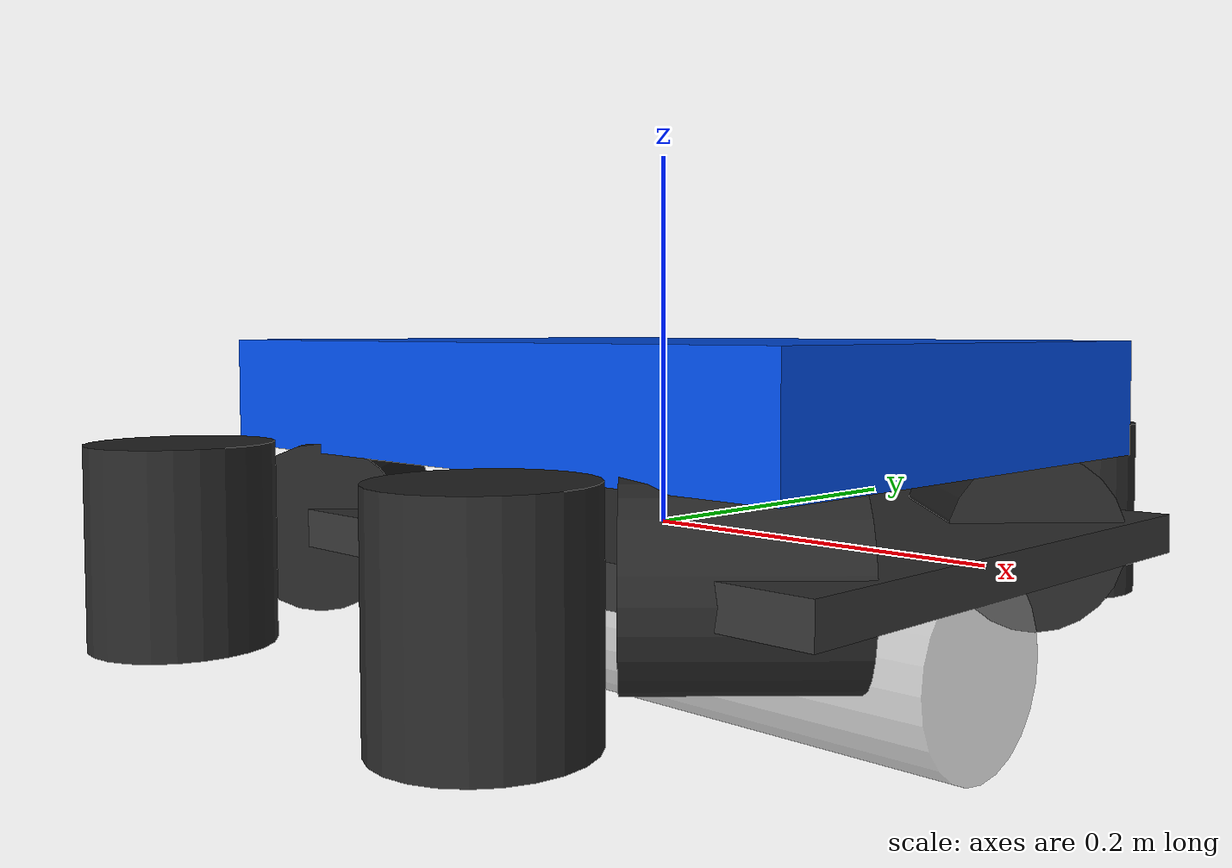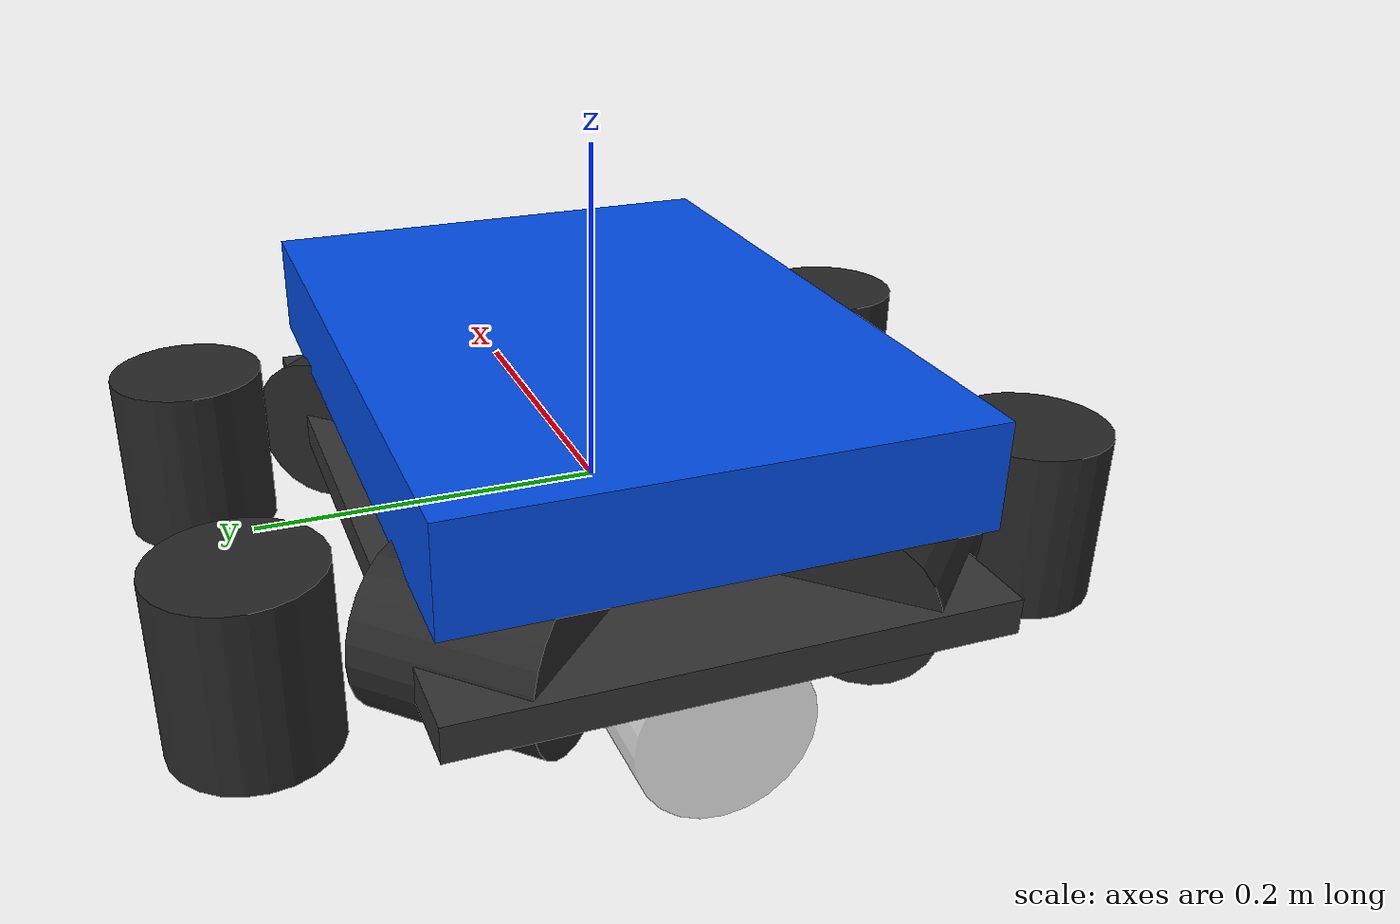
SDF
<?xml version="1.0"?>
<sdf version="1.11">
  <model name="rov">
    <link name="base_link">
      <inertial>
        <pose>0 0 0 0 0 0</pose>
        <mass>11.0</mass>
        <inertia>
          <ixx>0.1696</ixx><iyy>0.2429</iyy><izz>0.2979</izz>
          <ixy>0</ixy><ixz>0</ixz><iyz>0</iyz>
        </inertia>
        <fluid_added_mass>
          <xx>5.5</xx><xy>0</xy><xz>0</xz><xp>0</xp><xq>0</xq><xr>0</xr>
          <yy>12.7</yy><yz>0</yz><yp>0</yp><yq>0</yq><yr>0</yr>
          <zz>14.57</zz><zp>0</zp><zq>0</zq><zr>0</zr>
          <pp>0.12</pp><pq>0</pq><pr>0</pr>
          <qq>0.12</qq><qr>0</qr>
          <rr>0.12</rr>
        </fluid_added_mass>
      </inertial>

      <!-- Buoyancy + contact volume: 0.40 x 0.29 x 0.10 = 0.0116 m^3 -->
      <collision name="hull_collision">
        <pose>0 0 0.04 0 0 0</pose>
        <geometry><box><size>0.40 0.29 0.10</size></box></geometry>
      </collision>

      <!-- Visuals: frame + buoyancy block + electronics tube -->
      <visual name="frame_visual">
        <pose>0 0 0 0 0 0</pose>
        <geometry><box><size>0.44 0.30 0.02</size></box></geometry>
        <material><ambient>0.1 0.1 0.1 1</ambient><diffuse>0.2 0.2 0.2 1</diffuse></material>
      </visual>
      <visual name="float_visual">
        <pose>0 0 0.07 0 0 0</pose>
        <geometry><box><size>0.40 0.29 0.06</size></box></geometry>
        <material><ambient>0.0 0.2 0.6 1</ambient><diffuse>0.0 0.3 0.9 1</diffuse></material>
      </visual>
      <visual name="tube_visual">
        <pose>0 0 -0.05 0 1.5708 0</pose>
        <geometry><cylinder><radius>0.05</radius><length>0.40</length></cylinder></geometry>
        <material><ambient>0.6 0.6 0.6 0.6</ambient><diffuse>0.7 0.7 0.7 0.6</diffuse></material>
      </visual>

      <!-- IMU: co-located with base_link (imu_link in the URDF) -->
      <sensor name="imu_sensor" type="imu">
        <gz_frame_id>imu_link</gz_frame_id>
        <always_on>1</always_on>
        <update_rate>100</update_rate>
        <topic>/rov/imu</topic>
        <imu>
          <angular_velocity>
            <x><noise type="gaussian"><mean>0</mean><stddev>0.002</stddev></noise></x>
            <y><noise type="gaussian"><mean>0</mean><stddev>0.002</stddev></noise></y>
            <z><noise type="gaussian"><mean>0</mean><stddev>0.002</stddev></noise></z>
          </angular_velocity>
          <linear_acceleration>
            <x><noise type="gaussian"><mean>0</mean><stddev>0.02</stddev></noise></x>
            <y><noise type="gaussian"><mean>0</mean><stddev>0.02</stddev></noise></y>
            <z><noise type="gaussian"><mean>0</mean><stddev>0.02</stddev></noise></z>
          </linear_acceleration>
        </imu>
      </sensor>

      <!-- Forward camera. Pose must match camera_link in urdf/rov.urdf -->
      <sensor name="front_camera" type="camera">
        <pose>0.22 0 0.0 0 0 0</pose>
        <gz_frame_id>camera_optical_frame</gz_frame_id>
        <always_on>1</always_on>
        <update_rate>15</update_rate>
        <topic>/rov/camera/image</topic>
        <camera>
          <camera_info_topic>/rov/camera/camera_info</camera_info_topic>
          <horizontal_fov>1.40</horizontal_fov>
          <image><width>640</width><height>480</height><format>R8G8B8</format></image>
          <clip><near>0.05</near><far>30</far></clip>
        </camera>
      </sensor>
    </link>

    <link name="thruster1">
      <pose>0.15 -0.11 0.0 0 0 0</pose>
      <inertial>
        <mass>0.05</mass>
        <inertia><ixx>2e-5</ixx><iyy>2e-5</iyy><izz>3e-5</izz><ixy>0</ixy><ixz>0</ixz><iyz>0</iyz></inertia>
      </inertial>
      <visual name="visual">
        <pose>0 0 0 0 1.570796 0.785398</pose>
        <geometry><cylinder><radius>0.045</radius><length>0.10</length></cylinder></geometry>
        <material><ambient>0.1 0.1 0.1 1</ambient><diffuse>0.15 0.15 0.15 1</diffuse></material>
      </visual>
    </link>
    <joint name="thruster1_joint" type="revolute">
      <parent>base_link</parent>
      <child>thruster1</child>
      <axis>
        <xyz>0.70710678 0.70710678 0.0</xyz>
        <limit><lower>-1e16</lower><upper>1e16</upper><effort>1e6</effort><velocity>1e6</velocity></limit>
      </axis>
    </joint>
    <link name="thruster2">
      <pose>0.15 0.11 0.0 0 0 0</pose>
      <inertial>
        <mass>0.05</mass>
        <inertia><ixx>2e-5</ixx><iyy>2e-5</iyy><izz>3e-5</izz><ixy>0</ixy><ixz>0</ixz><iyz>0</iyz></inertia>
      </inertial>
      <visual name="visual">
        <pose>0 0 0 0 1.570796 -0.785398</pose>
        <geometry><cylinder><radius>0.045</radius><length>0.10</length></cylinder></geometry>
        <material><ambient>0.1 0.1 0.1 1</ambient><diffuse>0.15 0.15 0.15 1</diffuse></material>
      </visual>
    </link>
    <joint name="thruster2_joint" type="revolute">
      <parent>base_link</parent>
      <child>thruster2</child>
      <axis>
        <xyz>0.70710678 -0.70710678 0.0</xyz>
        <limit><lower>-1e16</lower><upper>1e16</upper><effort>1e6</effort><velocity>1e6</velocity></limit>
      </axis>
    </joint>
    <link name="thruster3">
      <pose>-0.15 -0.11 0.0 0 0 0</pose>
      <inertial>
        <mass>0.05</mass>
        <inertia><ixx>2e-5</ixx><iyy>2e-5</iyy><izz>3e-5</izz><ixy>0</ixy><ixz>0</ixz><iyz>0</iyz></inertia>
      </inertial>
      <visual name="visual">
        <pose>0 0 0 0 1.570796 -0.785398</pose>
        <geometry><cylinder><radius>0.045</radius><length>0.10</length></cylinder></geometry>
        <material><ambient>0.1 0.1 0.1 1</ambient><diffuse>0.15 0.15 0.15 1</diffuse></material>
      </visual>
    </link>
    <joint name="thruster3_joint" type="revolute">
      <parent>base_link</parent>
      <child>thruster3</child>
      <axis>
        <xyz>0.70710678 -0.70710678 0.0</xyz>
        <limit><lower>-1e16</lower><upper>1e16</upper><effort>1e6</effort><velocity>1e6</velocity></limit>
      </axis>
    </joint>
    <link name="thruster4">
      <pose>-0.15 0.11 0.0 0 0 0</pose>
      <inertial>
        <mass>0.05</mass>
        <inertia><ixx>2e-5</ixx><iyy>2e-5</iyy><izz>3e-5</izz><ixy>0</ixy><ixz>0</ixz><iyz>0</iyz></inertia>
      </inertial>
      <visual name="visual">
        <pose>0 0 0 0 1.570796 0.785398</pose>
        <geometry><cylinder><radius>0.045</radius><length>0.10</length></cylinder></geometry>
        <material><ambient>0.1 0.1 0.1 1</ambient><diffuse>0.15 0.15 0.15 1</diffuse></material>
      </visual>
    </link>
    <joint name="thruster4_joint" type="revolute">
      <parent>base_link</parent>
      <child>thruster4</child>
      <axis>
        <xyz>0.70710678 0.70710678 0.0</xyz>
        <limit><lower>-1e16</lower><upper>1e16</upper><effort>1e6</effort><velocity>1e6</velocity></limit>
      </axis>
    </joint>
    <link name="thruster5">
      <pose>0.12 -0.22 0.0 0 0 0</pose>
      <inertial>
        <mass>0.05</mass>
        <inertia><ixx>2e-5</ixx><iyy>2e-5</iyy><izz>3e-5</izz><ixy>0</ixy><ixz>0</ixz><iyz>0</iyz></inertia>
      </inertial>
      <visual name="visual">
        <pose>0 0 0 0 0.000000 0.000000</pose>
        <geometry><cylinder><radius>0.045</radius><length>0.10</length></cylinder></geometry>
        <material><ambient>0.1 0.1 0.1 1</ambient><diffuse>0.15 0.15 0.15 1</diffuse></material>
      </visual>
    </link>
    <joint name="thruster5_joint" type="revolute">
      <parent>base_link</parent>
      <child>thruster5</child>
      <axis>
        <xyz>0.0 0.0 1.0</xyz>
        <limit><lower>-1e16</lower><upper>1e16</upper><effort>1e6</effort><velocity>1e6</velocity></limit>
      </axis>
    </joint>
    <link name="thruster6">
      <pose>0.12 0.22 0.0 0 0 0</pose>
      <inertial>
        <mass>0.05</mass>
        <inertia><ixx>2e-5</ixx><iyy>2e-5</iyy><izz>3e-5</izz><ixy>0</ixy><ixz>0</ixz><iyz>0</iyz></inertia>
      </inertial>
      <visual name="visual">
        <pose>0 0 0 0 0.000000 0.000000</pose>
        <geometry><cylinder><radius>0.045</radius><length>0.10</length></cylinder></geometry>
        <material><ambient>0.1 0.1 0.1 1</ambient><diffuse>0.15 0.15 0.15 1</diffuse></material>
      </visual>
    </link>
    <joint name="thruster6_joint" type="revolute">
      <parent>base_link</parent>
      <child>thruster6</child>
      <axis>
        <xyz>0.0 0.0 1.0</xyz>
        <limit><lower>-1e16</lower><upper>1e16</upper><effort>1e6</effort><velocity>1e6</velocity></limit>
      </axis>
    </joint>
    <link name="thruster7">
      <pose>-0.12 -0.22 0.0 0 0 0</pose>
      <inertial>
        <mass>0.05</mass>
        <inertia><ixx>2e-5</ixx><iyy>2e-5</iyy><izz>3e-5</izz><ixy>0</ixy><ixz>0</ixz><iyz>0</iyz></inertia>
      </inertial>
      <visual name="visual">
        <pose>0 0 0 0 0.000000 0.000000</pose>
        <geometry><cylinder><radius>0.045</radius><length>0.10</length></cylinder></geometry>
        <material><ambient>0.1 0.1 0.1 1</ambient><diffuse>0.15 0.15 0.15 1</diffuse></material>
      </visual>
    </link>
    <joint name="thruster7_joint" type="revolute">
      <parent>base_link</parent>
      <child>thruster7</child>
      <axis>
        <xyz>0.0 0.0 1.0</xyz>
        <limit><lower>-1e16</lower><upper>1e16</upper><effort>1e6</effort><velocity>1e6</velocity></limit>
      </axis>
    </joint>
    <link name="thruster8">
      <pose>-0.12 0.22 0.0 0 0 0</pose>
      <inertial>
        <mass>0.05</mass>
        <inertia><ixx>2e-5</ixx><iyy>2e-5</iyy><izz>3e-5</izz><ixy>0</ixy><ixz>0</ixz><iyz>0</iyz></inertia>
      </inertial>
      <visual name="visual">
        <pose>0 0 0 0 0.000000 0.000000</pose>
        <geometry><cylinder><radius>0.045</radius><length>0.10</length></cylinder></geometry>
        <material><ambient>0.1 0.1 0.1 1</ambient><diffuse>0.15 0.15 0.15 1</diffuse></material>
      </visual>
    </link>
    <joint name="thruster8_joint" type="revolute">
      <parent>base_link</parent>
      <child>thruster8</child>
      <axis>
        <xyz>0.0 0.0 1.0</xyz>
        <limit><lower>-1e16</lower><upper>1e16</upper><effort>1e6</effort><velocity>1e6</velocity></limit>
      </axis>
    </joint>
    <!-- One Thruster system per thruster joint; command topic:
         /model/rov/joint/thrusterN_joint/cmd_thrust (gz.msgs.Double, Newtons) -->

    <plugin filename="gz-sim-thruster-system" name="gz::sim::systems::Thruster">
      <namespace>rov</namespace>
      <joint_name>thruster1_joint</joint_name>
      <thrust_coefficient>0.02</thrust_coefficient>
      <fluid_density>1000</fluid_density>
      <propeller_diameter>0.076</propeller_diameter>
      <use_angvel_cmd>false</use_angvel_cmd>
      <velocity_control>true</velocity_control>
      <max_thrust_cmd>40.0</max_thrust_cmd>
      <min_thrust_cmd>-30.0</min_thrust_cmd>
    </plugin>
    <plugin filename="gz-sim-thruster-system" name="gz::sim::systems::Thruster">
      <namespace>rov</namespace>
      <joint_name>thruster2_joint</joint_name>
      <thrust_coefficient>0.02</thrust_coefficient>
      <fluid_density>1000</fluid_density>
      <propeller_diameter>0.076</propeller_diameter>
      <use_angvel_cmd>false</use_angvel_cmd>
      <velocity_control>true</velocity_control>
      <max_thrust_cmd>40.0</max_thrust_cmd>
      <min_thrust_cmd>-30.0</min_thrust_cmd>
    </plugin>
    <plugin filename="gz-sim-thruster-system" name="gz::sim::systems::Thruster">
      <namespace>rov</namespace>
      <joint_name>thruster3_joint</joint_name>
      <thrust_coefficient>0.02</thrust_coefficient>
      <fluid_density>1000</fluid_density>
      <propeller_diameter>0.076</propeller_diameter>
      <use_angvel_cmd>false</use_angvel_cmd>
      <velocity_control>true</velocity_control>
      <max_thrust_cmd>40.0</max_thrust_cmd>
      <min_thrust_cmd>-30.0</min_thrust_cmd>
    </plugin>
    <plugin filename="gz-sim-thruster-system" name="gz::sim::systems::Thruster">
      <namespace>rov</namespace>
      <joint_name>thruster4_joint</joint_name>
      <thrust_coefficient>0.02</thrust_coefficient>
      <fluid_density>1000</fluid_density>
      <propeller_diameter>0.076</propeller_diameter>
      <use_angvel_cmd>false</use_angvel_cmd>
      <velocity_control>true</velocity_control>
      <max_thrust_cmd>40.0</max_thrust_cmd>
      <min_thrust_cmd>-30.0</min_thrust_cmd>
    </plugin>
    <plugin filename="gz-sim-thruster-system" name="gz::sim::systems::Thruster">
      <namespace>rov</namespace>
      <joint_name>thruster5_joint</joint_name>
      <thrust_coefficient>0.02</thrust_coefficient>
      <fluid_density>1000</fluid_density>
      <propeller_diameter>0.076</propeller_diameter>
      <use_angvel_cmd>false</use_angvel_cmd>
      <velocity_control>true</velocity_control>
      <max_thrust_cmd>40.0</max_thrust_cmd>
      <min_thrust_cmd>-30.0</min_thrust_cmd>
    </plugin>
    <plugin filename="gz-sim-thruster-system" name="gz::sim::systems::Thruster">
      <namespace>rov</namespace>
      <joint_name>thruster6_joint</joint_name>
      <thrust_coefficient>0.02</thrust_coefficient>
      <fluid_density>1000</fluid_density>
      <propeller_diameter>0.076</propeller_diameter>
      <use_angvel_cmd>false</use_angvel_cmd>
      <velocity_control>true</velocity_control>
      <max_thrust_cmd>40.0</max_thrust_cmd>
      <min_thrust_cmd>-30.0</min_thrust_cmd>
    </plugin>
    <plugin filename="gz-sim-thruster-system" name="gz::sim::systems::Thruster">
      <namespace>rov</namespace>
      <joint_name>thruster7_joint</joint_name>
      <thrust_coefficient>0.02</thrust_coefficient>
      <fluid_density>1000</fluid_density>
      <propeller_diameter>0.076</propeller_diameter>
      <use_angvel_cmd>false</use_angvel_cmd>
      <velocity_control>true</velocity_control>
      <max_thrust_cmd>40.0</max_thrust_cmd>
      <min_thrust_cmd>-30.0</min_thrust_cmd>
    </plugin>
    <plugin filename="gz-sim-thruster-system" name="gz::sim::systems::Thruster">
      <namespace>rov</namespace>
      <joint_name>thruster8_joint</joint_name>
      <thrust_coefficient>0.02</thrust_coefficient>
      <fluid_density>1000</fluid_density>
      <propeller_diameter>0.076</propeller_diameter>
      <use_angvel_cmd>false</use_angvel_cmd>
      <velocity_control>true</velocity_control>
      <max_thrust_cmd>40.0</max_thrust_cmd>
      <min_thrust_cmd>-30.0</min_thrust_cmd>
    </plugin>
    <!-- Hydrodynamics: added mass + linear/quadratic damping (PLACEHOLDERS) -->
    <plugin filename="gz-sim-hydrodynamics-system" name="gz::sim::systems::Hydrodynamics">
      <link_name>base_link</link_name>
      <water_density>1000</water_density>
      <xDotU>0</xDotU>
      <yDotV>0</yDotV>
      <zDotW>0</zDotW>
      <kDotP>0</kDotP>
      <mDotQ>0</mDotQ>
      <nDotR>0</nDotR>
      <!-- linear damping -->
      <xU>-4.03</xU>
      <yV>-6.22</yV>
      <zW>-5.18</zW>
      <kP>-0.07</kP>
      <mQ>-0.07</mQ>
      <nR>-0.07</nR>
      <!-- quadratic damping -->
      <xUabsU>-18.18</xUabsU>
      <yVabsV>-21.66</yVabsV>
      <zWabsW>-36.99</zWabsW>
      <kPabsP>-1.55</kPabsP>
      <mQabsQ>-1.55</mQabsQ>
      <nRabsR>-1.55</nRabsR>
    </plugin>

    <!-- Ground truth odometry (bridged to /odometry/ground_truth).
         Twist is expressed in the body frame (base_link). -->
    <plugin filename="gz-sim-odometry-publisher-system" name="gz::sim::systems::OdometryPublisher">
      <odom_frame>odom</odom_frame>
      <robot_base_frame>base_link</robot_base_frame>
      <dimensions>3</dimensions>
      <odom_publish_frequency>50</odom_publish_frequency>
      <odom_topic>/model/rov/odometry</odom_topic>
      <tf_topic>/model/rov/odometry_tf</tf_topic>
    </plugin>
  </model>
</sdf>
